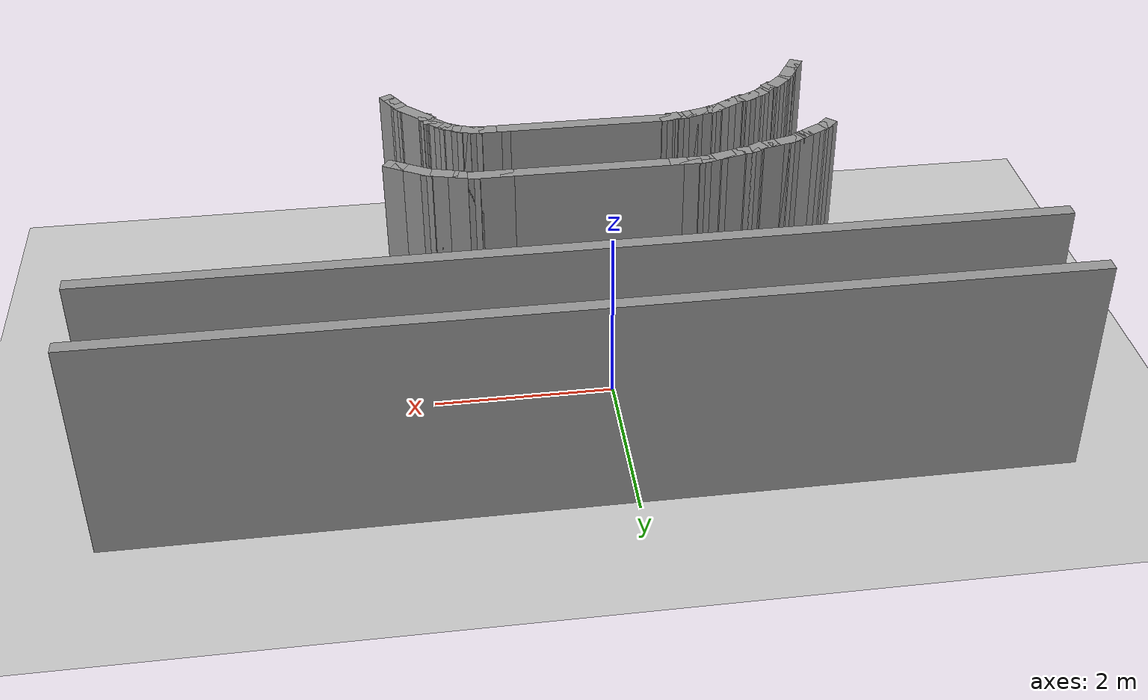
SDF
<sdf version="1.7">
 <world name="default">
  <model name="ground_plane">
   <static>1</static>
   <link name="link">
    <collision name="collision">
     <geometry><plane><normal>0 0 1</normal><size>100 100</size></plane></geometry>
     <surface><friction><ode><mu>100</mu><mu2>50</mu2></ode></friction></surface>
    </collision>
    <visual name="visual">
     <cast_shadows>0</cast_shadows>
     <geometry><plane><normal>0 0 1</normal><size>100 100</size></plane></geometry>
     <material>
      <script><uri>file://media/materials/scripts/gazebo.material</uri><name>Gazebo/Grey</name></script>
     </material>
    </visual>
   </link>
  </model>
  <model name="playground_track">
   <pose>0.405729 -1.1815 0 0 -0 0</pose>
   <link name="Wall_1">
    <collision name="Wall_1_Collision">
     <geometry><box><size>10.25 0.15 2.5</size></box></geometry>
     <pose>0 0 1.25 0 -0 0</pose>
    </collision>
    <visual name="Wall_1_Visual">
     <pose>0 0 1.25 0 -0 0</pose>
     <geometry><box><size>10.25 0.15 2.5</size></box></geometry>
     <material>
      <script><uri>file://media/materials/scripts/gazebo.material</uri><name>Gazebo/Grey</name></script>
      <ambient>1 1 1 1</ambient>
     </material>
     <meta><layer>0</layer></meta>
    </visual>
    <pose>-0.003811 3.01631 0 0 -0 0</pose>
   </link>
   <link name="Wall_133">
    <collision name="Wall_133_Collision">
     <geometry><box><size>0.25 0.15 2.5</size></box></geometry>
     <pose>0 0 1.25 0 -0 0</pose>
    </collision>
    <visual name="Wall_133_Visual">
     <pose>0 0 1.25 0 -0 0</pose>
     <geometry><box><size>0.25 0.15 2.5</size></box></geometry>
     <material>
      <script><uri>file://media/materials/scripts/gazebo.material</uri><name>Gazebo/Grey</name></script>
      <ambient>1 1 1 1</ambient>
     </material>
     <meta><layer>0</layer></meta>
    </visual>
    <pose>1.83248 -1.37665 0 0 -0 2.0944</pose>
   </link>
   <link name="Wall_134">
    <collision name="Wall_134_Collision">
     <geometry><box><size>0.25 0.15 2.5</size></box></geometry>
     <pose>0 0 1.25 0 -0 0</pose>
    </collision>
    <visual name="Wall_134_Visual">
     <pose>0 0 1.25 0 -0 0</pose>
     <geometry><box><size>0.25 0.15 2.5</size></box></geometry>
     <material>
      <script><uri>file://media/materials/scripts/gazebo.material</uri><name>Gazebo/Grey</name></script>
      <ambient>1 1 1 1</ambient>
     </material>
     <meta><layer>0</layer></meta>
    </visual>
    <pose>1.78248 -1.29005 0 0 -0 2.0944</pose>
   </link>
   <link name="Wall_135">
    <collision name="Wall_135_Collision">
     <geometry><box><size>0.25 0.15 2.5</size></box></geometry>
     <pose>0 0 1.25 0 -0 0</pose>
    </collision>
    <visual name="Wall_135_Visual">
     <pose>0 0 1.25 0 -0 0</pose>
     <geometry><box><size>0.25 0.15 2.5</size></box></geometry>
     <material>
      <script><uri>file://media/materials/scripts/gazebo.material</uri><name>Gazebo/Grey</name></script>
      <ambient>1 1 1 1</ambient>
     </material>
     <meta><layer>0</layer></meta>
    </visual>
    <pose>1.73248 -1.20345 0 0 -0 2.0944</pose>
   </link>
   <link name="Wall_136">
    <collision name="Wall_136_Collision">
     <geometry><box><size>0.5 0.15 2.5</size></box></geometry>
     <pose>0 0 1.25 0 -0 0</pose>
    </collision>
    <visual name="Wall_136_Visual">
     <pose>0 0 1.25 0 -0 0</pose>
     <geometry><box><size>0.5 0.15 2.5</size></box></geometry>
     <material>
      <script><uri>file://media/materials/scripts/gazebo.material</uri><name>Gazebo/Grey</name></script>
      <ambient>1 1 1 1</ambient>
     </material>
     <meta><layer>0</layer></meta>
    </visual>
    <pose>1.58373 -1.0364 0 0 -0 2.35619</pose>
   </link>
   <link name="Wall_137">
    <collision name="Wall_137_Collision">
     <geometry><box><size>0.15 0.15 2.5</size></box></geometry>
     <pose>0 0 1.25 0 -0 0</pose>
    </collision>
    <visual name="Wall_137_Visual">
     <pose>0 0 1.25 0 -0 0</pose>
     <geometry><box><size>0.15 0.15 2.5</size></box></geometry>
     <material>
      <script><uri>file://media/materials/scripts/gazebo.material</uri><name>Gazebo/Grey</name></script>
      <ambient>1 1 1 1</ambient>
     </material>
     <meta><layer>0</layer></meta>
    </visual>
    <pose>1.45999 -0.91266 0 0 -0 0</pose>
   </link>
   <link name="Wall_138">
    <collision name="Wall_138_Collision">
     <geometry><box><size>0.15 0.15 2.5</size></box></geometry>
     <pose>0 0 1.25 0 -0 0</pose>
    </collision>
    <visual name="Wall_138_Visual">
     <pose>0 0 1.25 0 -0 0</pose>
     <geometry><box><size>0.15 0.15 2.5</size></box></geometry>
     <material>
      <script><uri>file://media/materials/scripts/gazebo.material</uri><name>Gazebo/Grey</name></script>
      <ambient>1 1 1 1</ambient>
     </material>
     <meta><layer>0</layer></meta>
    </visual>
    <pose>1.45999 -0.91266 0 0 -0 0</pose>
   </link>
   <link name="Wall_139">
    <collision name="Wall_139_Collision">
     <geometry><box><size>0.25 0.15 2.5</size></box></geometry>
     <pose>0 0 1.25 0 -0 0</pose>
    </collision>
    <visual name="Wall_139_Visual">
     <pose>0 0 1.25 0 -0 0</pose>
     <geometry><box><size>0.25 0.15 2.5</size></box></geometry>
     <material>
      <script><uri>file://media/materials/scripts/gazebo.material</uri><name>Gazebo/Grey</name></script>
      <ambient>1 1 1 1</ambient>
     </material>
     <meta><layer>0</layer></meta>
    </visual>
    <pose>1.43499 -0.869358 0 0 -0 2.0944</pose>
   </link>
   <link name="Wall_140">
    <collision name="Wall_140_Collision">
     <geometry><box><size>0.15 0.15 2.5</size></box></geometry>
     <pose>0 0 1.25 0 -0 0</pose>
    </collision>
    <visual name="Wall_140_Visual">
     <pose>0 0 1.25 0 -0 0</pose>
     <geometry><box><size>0.15 0.15 2.5</size></box></geometry>
     <material>
      <script><uri>file://media/materials/scripts/gazebo.material</uri><name>Gazebo/Grey</name></script>
      <ambient>1 1 1 1</ambient>
     </material>
     <meta><layer>0</layer></meta>
    </visual>
    <pose>1.40999 -0.826057 0 0 -0 0</pose>
   </link>
   <link name="Wall_141">
    <collision name="Wall_141_Collision">
     <geometry><box><size>0.25 0.15 2.5</size></box></geometry>
     <pose>0 0 1.25 0 -0 0</pose>
    </collision>
    <visual name="Wall_141_Visual">
     <pose>0 0 1.25 0 -0 0</pose>
     <geometry><box><size>0.25 0.15 2.5</size></box></geometry>
     <material>
      <script><uri>file://media/materials/scripts/gazebo.material</uri><name>Gazebo/Grey</name></script>
      <ambient>1 1 1 1</ambient>
     </material>
     <meta><layer>0</layer></meta>
    </visual>
    <pose>1.37464 -0.790702 0 0 -0 2.35619</pose>
   </link>
   <link name="Wall_142">
    <collision name="Wall_142_Collision">
     <geometry><box><size>0.25 0.15 2.5</size></box></geometry>
     <pose>0 0 1.25 0 -0 0</pose>
    </collision>
    <visual name="Wall_142_Visual">
     <pose>0 0 1.25 0 -0 0</pose>
     <geometry><box><size>0.25 0.15 2.5</size></box></geometry>
     <material>
      <script><uri>file://media/materials/scripts/gazebo.material</uri><name>Gazebo/Grey</name></script>
      <ambient>1 1 1 1</ambient>
     </material>
     <meta><layer>0</layer></meta>
    </visual>
    <pose>1.30393 -0.719991 0 0 -0 2.35619</pose>
   </link>
   <link name="Wall_143">
    <collision name="Wall_143_Collision">
     <geometry><box><size>0.25 0.15 2.5</size></box></geometry>
     <pose>0 0 1.25 0 -0 0</pose>
    </collision>
    <visual name="Wall_143_Visual">
     <pose>0 0 1.25 0 -0 0</pose>
     <geometry><box><size>0.25 0.15 2.5</size></box></geometry>
     <material>
      <script><uri>file://media/materials/scripts/gazebo.material</uri><name>Gazebo/Grey</name></script>
      <ambient>1 1 1 1</ambient>
     </material>
     <meta><layer>0</layer></meta>
    </visual>
    <pose>1.22527 -0.659636 0 0 -0 2.61799</pose>
   </link>
   <link name="Wall_144">
    <collision name="Wall_144_Collision">
     <geometry><box><size>0.25 0.15 2.5</size></box></geometry>
     <pose>0 0 1.25 0 -0 0</pose>
    </collision>
    <visual name="Wall_144_Visual">
     <pose>0 0 1.25 0 -0 0</pose>
     <geometry><box><size>0.25 0.15 2.5</size></box></geometry>
     <material>
      <script><uri>file://media/materials/scripts/gazebo.material</uri><name>Gazebo/Grey</name></script>
      <ambient>1 1 1 1</ambient>
     </material>
     <meta><layer>0</layer></meta>
    </visual>
    <pose>1.13867 -0.609636 0 0 -0 2.61799</pose>
   </link>
   <link name="Wall_145">
    <collision name="Wall_145_Collision">
     <geometry><box><size>0.25 0.15 2.5</size></box></geometry>
     <pose>0 0 1.25 0 -0 0</pose>
    </collision>
    <visual name="Wall_145_Visual">
     <pose>0 0 1.25 0 -0 0</pose>
     <geometry><box><size>0.25 0.15 2.5</size></box></geometry>
     <material>
      <script><uri>file://media/materials/scripts/gazebo.material</uri><name>Gazebo/Grey</name></script>
      <ambient>1 1 1 1</ambient>
     </material>
     <meta><layer>0</layer></meta>
    </visual>
    <pose>1.04707 -0.571695 0 0 -0 2.87979</pose>
   </link>
   <link name="Wall_146">
    <collision name="Wall_146_Collision">
     <geometry><box><size>0.25 0.15 2.5</size></box></geometry>
     <pose>0 0 1.25 0 -0 0</pose>
    </collision>
    <visual name="Wall_146_Visual">
     <pose>0 0 1.25 0 -0 0</pose>
     <geometry><box><size>0.25 0.15 2.5</size></box></geometry>
     <material>
      <script><uri>file://media/materials/scripts/gazebo.material</uri><name>Gazebo/Grey</name></script>
      <ambient>1 1 1 1</ambient>
     </material>
     <meta><layer>0</layer></meta>
    </visual>
    <pose>0.950476 -0.545813 0 0 -0 2.87979</pose>
   </link>
   <link name="Wall_147">
    <collision name="Wall_147_Collision">
     <geometry><box><size>0.25 0.15 2.5</size></box></geometry>
     <pose>0 0 1.25 0 -0 0</pose>
    </collision>
    <visual name="Wall_147_Visual">
     <pose>0 0 1.25 0 -0 0</pose>
     <geometry><box><size>0.25 0.15 2.5</size></box></geometry>
     <material>
      <script><uri>file://media/materials/scripts/gazebo.material</uri><name>Gazebo/Grey</name></script>
      <ambient>1 1 1 1</ambient>
     </material>
     <meta><layer>0</layer></meta>
    </visual>
    <pose>0.852179 -0.532872 0 0 -0 3.14159</pose>
   </link>
   <link name="Wall_148">
    <collision name="Wall_148_Collision">
     <geometry><box><size>0.15 0.15 2.5</size></box></geometry>
     <pose>0 0 1.25 0 -0 0</pose>
    </collision>
    <visual name="Wall_148_Visual">
     <pose>0 0 1.25 0 -0 0</pose>
     <geometry><box><size>0.15 0.15 2.5</size></box></geometry>
     <material>
      <script><uri>file://media/materials/scripts/gazebo.material</uri><name>Gazebo/Grey</name></script>
      <ambient>1 1 1 1</ambient>
     </material>
     <meta><layer>0</layer></meta>
    </visual>
    <pose>0.802179 -0.532872 0 0 -0 0</pose>
   </link>
   <link name="Wall_149">
    <collision name="Wall_149_Collision">
     <geometry><box><size>0.25 0.15 2.5</size></box></geometry>
     <pose>0 0 1.25 0 -0 0</pose>
    </collision>
    <visual name="Wall_149_Visual">
     <pose>0 0 1.25 0 -0 0</pose>
     <geometry><box><size>0.25 0.15 2.5</size></box></geometry>
     <material>
      <script><uri>file://media/materials/scripts/gazebo.material</uri><name>Gazebo/Grey</name></script>
      <ambient>1 1 1 1</ambient>
     </material>
     <meta><layer>0</layer></meta>
    </visual>
    <pose>0.752179 -0.532872 0 0 -0 3.14159</pose>
   </link>
   <link name="Wall_150">
    <collision name="Wall_150_Collision">
     <geometry><box><size>0.25 0.15 2.5</size></box></geometry>
     <pose>0 0 1.25 0 -0 0</pose>
    </collision>
    <visual name="Wall_150_Visual">
     <pose>0 0 1.25 0 -0 0</pose>
     <geometry><box><size>0.25 0.15 2.5</size></box></geometry>
     <material>
      <script><uri>file://media/materials/scripts/gazebo.material</uri><name>Gazebo/Grey</name></script>
      <ambient>1 1 1 1</ambient>
     </material>
     <meta><layer>0</layer></meta>
    </visual>
    <pose>0.652179 -0.532872 0 0 -0 3.14159</pose>
   </link>
   <link name="Wall_151">
    <collision name="Wall_151_Collision">
     <geometry><box><size>2 0.15 2.5</size></box></geometry>
     <pose>0 0 1.25 0 -0 0</pose>
    </collision>
    <visual name="Wall_151_Visual">
     <pose>0 0 1.25 0 -0 0</pose>
     <geometry><box><size>2 0.15 2.5</size></box></geometry>
     <material>
      <script><uri>file://media/materials/scripts/gazebo.material</uri><name>Gazebo/Grey</name></script>
      <ambient>1 1 1 1</ambient>
     </material>
     <meta><layer>0</layer></meta>
    </visual>
    <pose>-0.322821 -0.532872 0 0 -0 3.14159</pose>
   </link>
   <link name="Wall_152">
    <collision name="Wall_152_Collision">
     <geometry><box><size>0.15 0.15 2.5</size></box></geometry>
     <pose>0 0 1.25 0 -0 0</pose>
    </collision>
    <visual name="Wall_152_Visual">
     <pose>0 0 1.25 0 -0 0</pose>
     <geometry><box><size>0.15 0.15 2.5</size></box></geometry>
     <material>
      <script><uri>file://media/materials/scripts/gazebo.material</uri><name>Gazebo/Grey</name></script>
      <ambient>1 1 1 1</ambient>
     </material>
     <meta><layer>0</layer></meta>
    </visual>
    <pose>-1.24782 -0.532872 0 0 -0 0</pose>
   </link>
   <link name="Wall_153">
    <collision name="Wall_153_Collision">
     <geometry><box><size>0.25 0.15 2.5</size></box></geometry>
     <pose>0 0 1.25 0 -0 0</pose>
    </collision>
    <visual name="Wall_153_Visual">
     <pose>0 0 1.25 0 -0 0</pose>
     <geometry><box><size>0.25 0.15 2.5</size></box></geometry>
     <material>
      <script><uri>file://media/materials/scripts/gazebo.material</uri><name>Gazebo/Grey</name></script>
      <ambient>1 1 1 1</ambient>
     </material>
     <meta><layer>0</layer></meta>
    </visual>
    <pose>-1.29612 -0.545813 0 0 -0 -2.87979</pose>
   </link>
   <link name="Wall_154">
    <collision name="Wall_154_Collision">
     <geometry><box><size>0.25 0.15 2.5</size></box></geometry>
     <pose>0 0 1.25 0 -0 0</pose>
    </collision>
    <visual name="Wall_154_Visual">
     <pose>0 0 1.25 0 -0 0</pose>
     <geometry><box><size>0.25 0.15 2.5</size></box></geometry>
     <material>
      <script><uri>file://media/materials/scripts/gazebo.material</uri><name>Gazebo/Grey</name></script>
      <ambient>1 1 1 1</ambient>
     </material>
     <meta><layer>0</layer></meta>
    </visual>
    <pose>-1.39441 -0.558754 0 0 -0 3.14159</pose>
   </link>
   <link name="Wall_155">
    <collision name="Wall_155_Collision">
     <geometry><box><size>0.25 0.15 2.5</size></box></geometry>
     <pose>0 0 1.25 0 -0 0</pose>
    </collision>
    <visual name="Wall_155_Visual">
     <pose>0 0 1.25 0 -0 0</pose>
     <geometry><box><size>0.25 0.15 2.5</size></box></geometry>
     <material>
      <script><uri>file://media/materials/scripts/gazebo.material</uri><name>Gazebo/Grey</name></script>
      <ambient>1 1 1 1</ambient>
     </material>
     <meta><layer>0</layer></meta>
    </visual>
    <pose>-1.49271 -0.571695 0 0 -0 -2.87979</pose>
   </link>
   <link name="Wall_156">
    <collision name="Wall_156_Collision">
     <geometry><box><size>0.25 0.15 2.5</size></box></geometry>
     <pose>0 0 1.25 0 -0 0</pose>
    </collision>
    <visual name="Wall_156_Visual">
     <pose>0 0 1.25 0 -0 0</pose>
     <geometry><box><size>0.25 0.15 2.5</size></box></geometry>
     <material>
      <script><uri>file://media/materials/scripts/gazebo.material</uri><name>Gazebo/Grey</name></script>
      <ambient>1 1 1 1</ambient>
     </material>
     <meta><layer>0</layer></meta>
    </visual>
    <pose>-1.5893 -0.597577 0 0 -0 -2.87979</pose>
   </link>
   <link name="Wall_157">
    <collision name="Wall_157_Collision">
     <geometry><box><size>0.25 0.15 2.5</size></box></geometry>
     <pose>0 0 1.25 0 -0 0</pose>
    </collision>
    <visual name="Wall_157_Visual">
     <pose>0 0 1.25 0 -0 0</pose>
     <geometry><box><size>0.25 0.15 2.5</size></box></geometry>
     <material>
      <script><uri>file://media/materials/scripts/gazebo.material</uri><name>Gazebo/Grey</name></script>
      <ambient>1 1 1 1</ambient>
     </material>
     <meta><layer>0</layer></meta>
    </visual>
    <pose>-1.5893 -0.597577 0 0 -0 0.261799</pose>
   </link>
   <link name="Wall_158">
    <collision name="Wall_158_Collision">
     <geometry><box><size>0.25 0.15 2.5</size></box></geometry>
     <pose>0 0 1.25 0 -0 0</pose>
    </collision>
    <visual name="Wall_158_Visual">
     <pose>0 0 1.25 0 -0 0</pose>
     <geometry><box><size>0.25 0.15 2.5</size></box></geometry>
     <material>
      <script><uri>file://media/materials/scripts/gazebo.material</uri><name>Gazebo/Grey</name></script>
      <ambient>1 1 1 1</ambient>
     </material>
     <meta><layer>0</layer></meta>
    </visual>
    <pose>-1.5893 -0.597577 0 0 -0 -2.87979</pose>
   </link>
   <link name="Wall_159">
    <collision name="Wall_159_Collision">
     <geometry><box><size>0.25 0.15 2.5</size></box></geometry>
     <pose>0 0 1.25 0 -0 0</pose>
    </collision>
    <visual name="Wall_159_Visual">
     <pose>0 0 1.25 0 -0 0</pose>
     <geometry><box><size>0.25 0.15 2.5</size></box></geometry>
     <material>
      <script><uri>file://media/materials/scripts/gazebo.material</uri><name>Gazebo/Grey</name></script>
      <ambient>1 1 1 1</ambient>
     </material>
     <meta><layer>0</layer></meta>
    </visual>
    <pose>-1.68589 -0.623459 0 0 -0 -2.87979</pose>
   </link>
   <link name="Wall_160">
    <collision name="Wall_160_Collision">
     <geometry><box><size>0.25 0.15 2.5</size></box></geometry>
     <pose>0 0 1.25 0 -0 0</pose>
    </collision>
    <visual name="Wall_160_Visual">
     <pose>0 0 1.25 0 -0 0</pose>
     <geometry><box><size>0.25 0.15 2.5</size></box></geometry>
     <material>
      <script><uri>file://media/materials/scripts/gazebo.material</uri><name>Gazebo/Grey</name></script>
      <ambient>1 1 1 1</ambient>
     </material>
     <meta><layer>0</layer></meta>
    </visual>
    <pose>-1.78249 -0.649341 0 0 -0 -2.87979</pose>
   </link>
   <link name="Wall_161">
    <collision name="Wall_161_Collision">
     <geometry><box><size>0.15 0.15 2.5</size></box></geometry>
     <pose>0 0 1.25 0 -0 0</pose>
    </collision>
    <visual name="Wall_161_Visual">
     <pose>0 0 1.25 0 -0 0</pose>
     <geometry><box><size>0.15 0.15 2.5</size></box></geometry>
     <material>
      <script><uri>file://media/materials/scripts/gazebo.material</uri><name>Gazebo/Grey</name></script>
      <ambient>1 1 1 1</ambient>
     </material>
     <meta><layer>0</layer></meta>
    </visual>
    <pose>-1.83078 -0.662282 0 0 -0 0</pose>
   </link>
   <link name="Wall_162">
    <collision name="Wall_162_Collision">
     <geometry><box><size>0.25 0.15 2.5</size></box></geometry>
     <pose>0 0 1.25 0 -0 0</pose>
    </collision>
    <visual name="Wall_162_Visual">
     <pose>0 0 1.25 0 -0 0</pose>
     <geometry><box><size>0.25 0.15 2.5</size></box></geometry>
     <material>
      <script><uri>file://media/materials/scripts/gazebo.material</uri><name>Gazebo/Grey</name></script>
      <ambient>1 1 1 1</ambient>
     </material>
     <meta><layer>0</layer></meta>
    </visual>
    <pose>-1.87409 -0.687282 0 0 -0 -2.61799</pose>
   </link>
   <link name="Wall_163">
    <collision name="Wall_163_Collision">
     <geometry><box><size>0.25 0.15 2.5</size></box></geometry>
     <pose>0 0 1.25 0 -0 0</pose>
    </collision>
    <visual name="Wall_163_Visual">
     <pose>0 0 1.25 0 -0 0</pose>
     <geometry><box><size>0.25 0.15 2.5</size></box></geometry>
     <material>
      <script><uri>file://media/materials/scripts/gazebo.material</uri><name>Gazebo/Grey</name></script>
      <ambient>1 1 1 1</ambient>
     </material>
     <meta><layer>0</layer></meta>
    </visual>
    <pose>-1.96069 -0.737282 0 0 -0 -2.61799</pose>
   </link>
   <link name="Wall_164">
    <collision name="Wall_164_Collision">
     <geometry><box><size>0.25 0.15 2.5</size></box></geometry>
     <pose>0 0 1.25 0 -0 0</pose>
    </collision>
    <visual name="Wall_164_Visual">
     <pose>0 0 1.25 0 -0 0</pose>
     <geometry><box><size>0.25 0.15 2.5</size></box></geometry>
     <material>
      <script><uri>file://media/materials/scripts/gazebo.material</uri><name>Gazebo/Grey</name></script>
      <ambient>1 1 1 1</ambient>
     </material>
     <meta><layer>0</layer></meta>
    </visual>
    <pose>-2.04729 -0.787282 0 0 -0 -2.61799</pose>
   </link>
   <link name="Wall_165">
    <collision name="Wall_165_Collision">
     <geometry><box><size>0.25 0.15 2.5</size></box></geometry>
     <pose>0 0 1.25 0 -0 0</pose>
    </collision>
    <visual name="Wall_165_Visual">
     <pose>0 0 1.25 0 -0 0</pose>
     <geometry><box><size>0.25 0.15 2.5</size></box></geometry>
     <material>
      <script><uri>file://media/materials/scripts/gazebo.material</uri><name>Gazebo/Grey</name></script>
      <ambient>1 1 1 1</ambient>
     </material>
     <meta><layer>0</layer></meta>
    </visual>
    <pose>-2.13389 -0.837282 0 0 -0 -2.61799</pose>
   </link>
   <link name="Wall_166">
    <collision name="Wall_166_Collision">
     <geometry><box><size>0.25 0.15 2.5</size></box></geometry>
     <pose>0 0 1.25 0 -0 0</pose>
    </collision>
    <visual name="Wall_166_Visual">
     <pose>0 0 1.25 0 -0 0</pose>
     <geometry><box><size>0.25 0.15 2.5</size></box></geometry>
     <material>
      <script><uri>file://media/materials/scripts/gazebo.material</uri><name>Gazebo/Grey</name></script>
      <ambient>1 1 1 1</ambient>
     </material>
     <meta><layer>0</layer></meta>
    </visual>
    <pose>-2.22549 -0.875222 0 0 -0 -2.87979</pose>
   </link>
   <link name="Wall_167">
    <collision name="Wall_167_Collision">
     <geometry><box><size>0.25 0.15 2.5</size></box></geometry>
     <pose>0 0 1.25 0 -0 0</pose>
    </collision>
    <visual name="Wall_167_Visual">
     <pose>0 0 1.25 0 -0 0</pose>
     <geometry><box><size>0.25 0.15 2.5</size></box></geometry>
     <material>
      <script><uri>file://media/materials/scripts/gazebo.material</uri><name>Gazebo/Grey</name></script>
      <ambient>1 1 1 1</ambient>
     </material>
     <meta><layer>0</layer></meta>
    </visual>
    <pose>-2.31709 -0.913163 0 0 -0 -2.61799</pose>
   </link>
   <link name="Wall_168">
    <collision name="Wall_168_Collision">
     <geometry><box><size>0.25 0.15 2.5</size></box></geometry>
     <pose>0 0 1.25 0 -0 0</pose>
    </collision>
    <visual name="Wall_168_Visual">
     <pose>0 0 1.25 0 -0 0</pose>
     <geometry><box><size>0.25 0.15 2.5</size></box></geometry>
     <material>
      <script><uri>file://media/materials/scripts/gazebo.material</uri><name>Gazebo/Grey</name></script>
      <ambient>1 1 1 1</ambient>
     </material>
     <meta><layer>0</layer></meta>
    </visual>
    <pose>-2.40369 -0.963163 0 0 -0 -2.61799</pose>
   </link>
   <link name="Wall_169">
    <collision name="Wall_169_Collision">
     <geometry><box><size>0.25 0.15 2.5</size></box></geometry>
     <pose>0 0 1.25 0 -0 0</pose>
    </collision>
    <visual name="Wall_169_Visual">
     <pose>0 0 1.25 0 -0 0</pose>
     <geometry><box><size>0.25 0.15 2.5</size></box></geometry>
     <material>
      <script><uri>file://media/materials/scripts/gazebo.material</uri><name>Gazebo/Grey</name></script>
      <ambient>1 1 1 1</ambient>
     </material>
     <meta><layer>0</layer></meta>
    </visual>
    <pose>-2.48235 -1.02352 0 0 -0 -2.35619</pose>
   </link>
   <link name="Wall_170">
    <collision name="Wall_170_Collision">
     <geometry><box><size>0.25 0.15 2.5</size></box></geometry>
     <pose>0 0 1.25 0 -0 0</pose>
    </collision>
    <visual name="Wall_170_Visual">
     <pose>0 0 1.25 0 -0 0</pose>
     <geometry><box><size>0.25 0.15 2.5</size></box></geometry>
     <material>
      <script><uri>file://media/materials/scripts/gazebo.material</uri><name>Gazebo/Grey</name></script>
      <ambient>1 1 1 1</ambient>
     </material>
     <meta><layer>0</layer></meta>
    </visual>
    <pose>-2.55306 -1.09423 0 0 -0 -2.35619</pose>
   </link>
   <link name="Wall_171">
    <collision name="Wall_171_Collision">
     <geometry><box><size>0.25 0.15 2.5</size></box></geometry>
     <pose>0 0 1.25 0 -0 0</pose>
    </collision>
    <visual name="Wall_171_Visual">
     <pose>0 0 1.25 0 -0 0</pose>
     <geometry><box><size>0.25 0.15 2.5</size></box></geometry>
     <material>
      <script><uri>file://media/materials/scripts/gazebo.material</uri><name>Gazebo/Grey</name></script>
      <ambient>1 1 1 1</ambient>
     </material>
     <meta><layer>0</layer></meta>
    </visual>
    <pose>-2.63171 -1.15458 0 0 -0 -2.61799</pose>
   </link>
   <link name="Wall_172">
    <collision name="Wall_172_Collision">
     <geometry><box><size>0.25 0.15 2.5</size></box></geometry>
     <pose>0 0 1.25 0 -0 0</pose>
    </collision>
    <visual name="Wall_172_Visual">
     <pose>0 0 1.25 0 -0 0</pose>
     <geometry><box><size>0.25 0.15 2.5</size></box></geometry>
     <material>
      <script><uri>file://media/materials/scripts/gazebo.material</uri><name>Gazebo/Grey</name></script>
      <ambient>1 1 1 1</ambient>
     </material>
     <meta><layer>0</layer></meta>
    </visual>
    <pose>-2.71037 -1.21494 0 0 -0 -2.35619</pose>
   </link>
   <link name="Wall_173">
    <collision name="Wall_173_Collision">
     <geometry><box><size>0.25 0.15 2.5</size></box></geometry>
     <pose>0 0 1.25 0 -0 0</pose>
    </collision>
    <visual name="Wall_173_Visual">
     <pose>0 0 1.25 0 -0 0</pose>
     <geometry><box><size>0.25 0.15 2.5</size></box></geometry>
     <material>
      <script><uri>file://media/materials/scripts/gazebo.material</uri><name>Gazebo/Grey</name></script>
      <ambient>1 1 1 1</ambient>
     </material>
     <meta><layer>0</layer></meta>
    </visual>
    <pose>-2.78108 -1.28565 0 0 -0 -2.35619</pose>
   </link>
   <link name="Wall_174">
    <collision name="Wall_174_Collision">
     <geometry><box><size>0.25 0.15 2.5</size></box></geometry>
     <pose>0 0 1.25 0 -0 0</pose>
    </collision>
    <visual name="Wall_174_Visual">
     <pose>0 0 1.25 0 -0 0</pose>
     <geometry><box><size>0.25 0.15 2.5</size></box></geometry>
     <material>
      <script><uri>file://media/materials/scripts/gazebo.material</uri><name>Gazebo/Grey</name></script>
      <ambient>1 1 1 1</ambient>
     </material>
     <meta><layer>0</layer></meta>
    </visual>
    <pose>-2.84144 -1.36431 0 0 -0 -2.0944</pose>
   </link>
   <link name="Wall_175">
    <collision name="Wall_175_Collision">
     <geometry><box><size>0.25 0.15 2.5</size></box></geometry>
     <pose>0 0 1.25 0 -0 0</pose>
    </collision>
    <visual name="Wall_175_Visual">
     <pose>0 0 1.25 0 -0 0</pose>
     <geometry><box><size>0.25 0.15 2.5</size></box></geometry>
     <material>
      <script><uri>file://media/materials/scripts/gazebo.material</uri><name>Gazebo/Grey</name></script>
      <ambient>1 1 1 1</ambient>
     </material>
     <meta><layer>0</layer></meta>
    </visual>
    <pose>-2.89144 -1.45091 0 0 -0 -2.0944</pose>
   </link>
   <link name="Wall_176">
    <collision name="Wall_176_Collision">
     <geometry><box><size>0.25 0.15 2.5</size></box></geometry>
     <pose>0 0 1.25 0 -0 0</pose>
    </collision>
    <visual name="Wall_176_Visual">
     <pose>0 0 1.25 0 -0 0</pose>
     <geometry><box><size>0.25 0.15 2.5</size></box></geometry>
     <material>
      <script><uri>file://media/materials/scripts/gazebo.material</uri><name>Gazebo/Grey</name></script>
      <ambient>1 1 1 1</ambient>
     </material>
     <meta><layer>0</layer></meta>
    </visual>
    <pose>-2.94144 -1.53751 0 0 -0 -2.0944</pose>
   </link>
   <link name="Wall_177">
    <collision name="Wall_177_Collision">
     <geometry><box><size>0.25 0.15 2.5</size></box></geometry>
     <pose>0 0 1.25 0 -0 0</pose>
    </collision>
    <visual name="Wall_177_Visual">
     <pose>0 0 1.25 0 -0 0</pose>
     <geometry><box><size>0.25 0.15 2.5</size></box></geometry>
     <material>
      <script><uri>file://media/materials/scripts/gazebo.material</uri><name>Gazebo/Grey</name></script>
      <ambient>1 1 1 1</ambient>
     </material>
     <meta><layer>0</layer></meta>
    </visual>
    <pose>-2.99144 -1.62411 0 0 -0 -2.0944</pose>
   </link>
   <link name="Wall_275">
    <collision name="Wall_275_Collision">
     <geometry><box><size>10.25 0.15 2.5</size></box></geometry>
     <pose>0 0 1.25 0 -0 0</pose>
    </collision>
    <visual name="Wall_275_Visual">
     <pose>0 0 1.25 0 -0 0</pose>
     <geometry><box><size>10.25 0.15 2.5</size></box></geometry>
     <material>
      <script><uri>file://media/materials/scripts/gazebo.material</uri><name>Gazebo/Grey</name></script>
      <ambient>1 1 1 1</ambient>
     </material>
     <meta><layer>0</layer></meta>
    </visual>
    <pose>0.022639 1.98476 0 0 -0 0</pose>
   </link>
   <link name="Wall_336">
    <collision name="Wall_336_Collision">
     <geometry><box><size>0.25 0.15 2.5</size></box></geometry>
     <pose>0 0 1.25 0 -0 0</pose>
    </collision>
    <visual name="Wall_336_Visual">
     <pose>0 0 1.25 0 -0 0</pose>
     <geometry><box><size>0.25 0.15 2.5</size></box></geometry>
     <material>
      <script><uri>file://media/materials/scripts/gazebo.material</uri><name>Gazebo/Grey</name></script>
      <ambient>1 1 1 1</ambient>
     </material>
     <meta><layer>0</layer></meta>
    </visual>
    <pose>1.83184 0.122112 0 0 -0 2.61799</pose>
   </link>
   <link name="Wall_337">
    <collision name="Wall_337_Collision">
     <geometry><box><size>0.5 0.15 2.5</size></box></geometry>
     <pose>0 0 1.25 0 -0 0</pose>
    </collision>
    <visual name="Wall_337_Visual">
     <pose>0 0 1.25 0 -0 0</pose>
     <geometry><box><size>0.5 0.15 2.5</size></box></geometry>
     <material>
      <script><uri>file://media/materials/scripts/gazebo.material</uri><name>Gazebo/Grey</name></script>
      <ambient>1 1 1 1</ambient>
     </material>
     <meta><layer>0</layer></meta>
    </visual>
    <pose>1.63698 0.234612 0 0 -0 2.61799</pose>
   </link>
   <link name="Wall_338">
    <collision name="Wall_338_Collision">
     <geometry><box><size>0.25 0.15 2.5</size></box></geometry>
     <pose>0 0 1.25 0 -0 0</pose>
    </collision>
    <visual name="Wall_338_Visual">
     <pose>0 0 1.25 0 -0 0</pose>
     <geometry><box><size>0.25 0.15 2.5</size></box></geometry>
     <material>
      <script><uri>file://media/materials/scripts/gazebo.material</uri><name>Gazebo/Grey</name></script>
      <ambient>1 1 1 1</ambient>
     </material>
     <meta><layer>0</layer></meta>
    </visual>
    <pose>1.43713 0.335053 0 0 -0 2.87979</pose>
   </link>
   <link name="Wall_339">
    <collision name="Wall_339_Collision">
     <geometry><box><size>0.25 0.15 2.5</size></box></geometry>
     <pose>0 0 1.25 0 -0 0</pose>
    </collision>
    <visual name="Wall_339_Visual">
     <pose>0 0 1.25 0 -0 0</pose>
     <geometry><box><size>0.25 0.15 2.5</size></box></geometry>
     <material>
      <script><uri>file://media/materials/scripts/gazebo.material</uri><name>Gazebo/Grey</name></script>
      <ambient>1 1 1 1</ambient>
     </material>
     <meta><layer>0</layer></meta>
    </visual>
    <pose>1.34054 0.360935 0 0 -0 2.87979</pose>
   </link>
   <link name="Wall_340">
    <collision name="Wall_340_Collision">
     <geometry><box><size>0.25 0.15 2.5</size></box></geometry>
     <pose>0 0 1.25 0 -0 0</pose>
    </collision>
    <visual name="Wall_340_Visual">
     <pose>0 0 1.25 0 -0 0</pose>
     <geometry><box><size>0.25 0.15 2.5</size></box></geometry>
     <material>
      <script><uri>file://media/materials/scripts/gazebo.material</uri><name>Gazebo/Grey</name></script>
      <ambient>1 1 1 1</ambient>
     </material>
     <meta><layer>0</layer></meta>
    </visual>
    <pose>1.24395 0.386817 0 0 -0 2.87979</pose>
   </link>
   <link name="Wall_341">
    <collision name="Wall_341_Collision">
     <geometry><box><size>0.25 0.15 2.5</size></box></geometry>
     <pose>0 0 1.25 0 -0 0</pose>
    </collision>
    <visual name="Wall_341_Visual">
     <pose>0 0 1.25 0 -0 0</pose>
     <geometry><box><size>0.25 0.15 2.5</size></box></geometry>
     <material>
      <script><uri>file://media/materials/scripts/gazebo.material</uri><name>Gazebo/Grey</name></script>
      <ambient>1 1 1 1</ambient>
     </material>
     <meta><layer>0</layer></meta>
    </visual>
    <pose>1.14736 0.412699 0 0 -0 2.87979</pose>
   </link>
   <link name="Wall_342">
    <collision name="Wall_342_Collision">
     <geometry><box><size>0.25 0.15 2.5</size></box></geometry>
     <pose>0 0 1.25 0 -0 0</pose>
    </collision>
    <visual name="Wall_342_Visual">
     <pose>0 0 1.25 0 -0 0</pose>
     <geometry><box><size>0.25 0.15 2.5</size></box></geometry>
     <material>
      <script><uri>file://media/materials/scripts/gazebo.material</uri><name>Gazebo/Grey</name></script>
      <ambient>1 1 1 1</ambient>
     </material>
     <meta><layer>0</layer></meta>
    </visual>
    <pose>1.05076 0.438581 0 0 -0 2.87979</pose>
   </link>
   <link name="Wall_343">
    <collision name="Wall_343_Collision">
     <geometry><box><size>0.15 0.15 2.5</size></box></geometry>
     <pose>0 0 1.25 0 -0 0</pose>
    </collision>
    <visual name="Wall_343_Visual">
     <pose>0 0 1.25 0 -0 0</pose>
     <geometry><box><size>0.15 0.15 2.5</size></box></geometry>
     <material>
      <script><uri>file://media/materials/scripts/gazebo.material</uri><name>Gazebo/Grey</name></script>
      <ambient>1 1 1 1</ambient>
     </material>
     <meta><layer>0</layer></meta>
    </visual>
    <pose>1.00247 0.451522 0 0 -0 0</pose>
   </link>
   <link name="Wall_344">
    <collision name="Wall_344_Collision">
     <geometry><box><size>0.5 0.15 2.5</size></box></geometry>
     <pose>0 0 1.25 0 -0 0</pose>
    </collision>
    <visual name="Wall_344_Visual">
     <pose>0 0 1.25 0 -0 0</pose>
     <geometry><box><size>0.5 0.15 2.5</size></box></geometry>
     <material>
      <script><uri>file://media/materials/scripts/gazebo.material</uri><name>Gazebo/Grey</name></script>
      <ambient>1 1 1 1</ambient>
     </material>
     <meta><layer>0</layer></meta>
    </visual>
    <pose>0.827467 0.451522 0 0 -0 3.14159</pose>
   </link>
   <link name="Wall_345">
    <collision name="Wall_345_Collision">
     <geometry><box><size>2 0.15 2.5</size></box></geometry>
     <pose>0 0 1.25 0 -0 0</pose>
    </collision>
    <visual name="Wall_345_Visual">
     <pose>0 0 1.25 0 -0 0</pose>
     <geometry><box><size>2 0.15 2.5</size></box></geometry>
     <material>
      <script><uri>file://media/materials/scripts/gazebo.material</uri><name>Gazebo/Grey</name></script>
      <ambient>1 1 1 1</ambient>
     </material>
     <meta><layer>0</layer></meta>
    </visual>
    <pose>-0.272533 0.451522 0 0 -0 3.14159</pose>
   </link>
   <link name="Wall_346">
    <collision name="Wall_346_Collision">
     <geometry><box><size>0.25 0.15 2.5</size></box></geometry>
     <pose>0 0 1.25 0 -0 0</pose>
    </collision>
    <visual name="Wall_346_Visual">
     <pose>0 0 1.25 0 -0 0</pose>
     <geometry><box><size>0.25 0.15 2.5</size></box></geometry>
     <material>
      <script><uri>file://media/materials/scripts/gazebo.material</uri><name>Gazebo/Grey</name></script>
      <ambient>1 1 1 1</ambient>
     </material>
     <meta><layer>0</layer></meta>
    </visual>
    <pose>-1.24753 0.451522 0 0 -0 3.14159</pose>
   </link>
   <link name="Wall_347">
    <collision name="Wall_347_Collision">
     <geometry><box><size>0.25 0.15 2.5</size></box></geometry>
     <pose>0 0 1.25 0 -0 0</pose>
    </collision>
    <visual name="Wall_347_Visual">
     <pose>0 0 1.25 0 -0 0</pose>
     <geometry><box><size>0.25 0.15 2.5</size></box></geometry>
     <material>
      <script><uri>file://media/materials/scripts/gazebo.material</uri><name>Gazebo/Grey</name></script>
      <ambient>1 1 1 1</ambient>
     </material>
     <meta><layer>0</layer></meta>
    </visual>
    <pose>-1.34753 0.451522 0 0 -0 3.14159</pose>
   </link>
   <link name="Wall_348">
    <collision name="Wall_348_Collision">
     <geometry><box><size>0.25 0.15 2.5</size></box></geometry>
     <pose>0 0 1.25 0 -0 0</pose>
    </collision>
    <visual name="Wall_348_Visual">
     <pose>0 0 1.25 0 -0 0</pose>
     <geometry><box><size>0.25 0.15 2.5</size></box></geometry>
     <material>
      <script><uri>file://media/materials/scripts/gazebo.material</uri><name>Gazebo/Grey</name></script>
      <ambient>1 1 1 1</ambient>
     </material>
     <meta><layer>0</layer></meta>
    </visual>
    <pose>-1.44753 0.451522 0 0 -0 3.14159</pose>
   </link>
   <link name="Wall_349">
    <collision name="Wall_349_Collision">
     <geometry><box><size>0.25 0.15 2.5</size></box></geometry>
     <pose>0 0 1.25 0 -0 0</pose>
    </collision>
    <visual name="Wall_349_Visual">
     <pose>0 0 1.25 0 -0 0</pose>
     <geometry><box><size>0.25 0.15 2.5</size></box></geometry>
     <material>
      <script><uri>file://media/materials/scripts/gazebo.material</uri><name>Gazebo/Grey</name></script>
      <ambient>1 1 1 1</ambient>
     </material>
     <meta><layer>0</layer></meta>
    </visual>
    <pose>-1.54583 0.438581 0 0 -0 -2.87979</pose>
   </link>
   <link name="Wall_350">
    <collision name="Wall_350_Collision">
     <geometry><box><size>0.25 0.15 2.5</size></box></geometry>
     <pose>0 0 1.25 0 -0 0</pose>
    </collision>
    <visual name="Wall_350_Visual">
     <pose>0 0 1.25 0 -0 0</pose>
     <geometry><box><size>0.25 0.15 2.5</size></box></geometry>
     <material>
      <script><uri>file://media/materials/scripts/gazebo.material</uri><name>Gazebo/Grey</name></script>
      <ambient>1 1 1 1</ambient>
     </material>
     <meta><layer>0</layer></meta>
    </visual>
    <pose>-1.64242 0.412699 0 0 -0 -2.87979</pose>
   </link>
   <link name="Wall_351">
    <collision name="Wall_351_Collision">
     <geometry><box><size>0.15 0.15 2.5</size></box></geometry>
     <pose>0 0 1.25 0 -0 0</pose>
    </collision>
    <visual name="Wall_351_Visual">
     <pose>0 0 1.25 0 -0 0</pose>
     <geometry><box><size>0.15 0.15 2.5</size></box></geometry>
     <material>
      <script><uri>file://media/materials/scripts/gazebo.material</uri><name>Gazebo/Grey</name></script>
      <ambient>1 1 1 1</ambient>
     </material>
     <meta><layer>0</layer></meta>
    </visual>
    <pose>-1.69072 0.399758 0 0 -0 0</pose>
   </link>
   <link name="Wall_352">
    <collision name="Wall_352_Collision">
     <geometry><box><size>0.25 0.15 2.5</size></box></geometry>
     <pose>0 0 1.25 0 -0 0</pose>
    </collision>
    <visual name="Wall_352_Visual">
     <pose>0 0 1.25 0 -0 0</pose>
     <geometry><box><size>0.25 0.15 2.5</size></box></geometry>
     <material>
      <script><uri>file://media/materials/scripts/gazebo.material</uri><name>Gazebo/Grey</name></script>
      <ambient>1 1 1 1</ambient>
     </material>
     <meta><layer>0</layer></meta>
    </visual>
    <pose>-1.73901 0.386817 0 0 -0 -2.87979</pose>
   </link>
   <link name="Wall_353">
    <collision name="Wall_353_Collision">
     <geometry><box><size>0.25 0.15 2.5</size></box></geometry>
     <pose>0 0 1.25 0 -0 0</pose>
    </collision>
    <visual name="Wall_353_Visual">
     <pose>0 0 1.25 0 -0 0</pose>
     <geometry><box><size>0.25 0.15 2.5</size></box></geometry>
     <material>
      <script><uri>file://media/materials/scripts/gazebo.material</uri><name>Gazebo/Grey</name></script>
      <ambient>1 1 1 1</ambient>
     </material>
     <meta><layer>0</layer></meta>
    </visual>
    <pose>-1.83561 0.360935 0 0 -0 -2.87979</pose>
   </link>
   <link name="Wall_354">
    <collision name="Wall_354_Collision">
     <geometry><box><size>0.25 0.15 2.5</size></box></geometry>
     <pose>0 0 1.25 0 -0 0</pose>
    </collision>
    <visual name="Wall_354_Visual">
     <pose>0 0 1.25 0 -0 0</pose>
     <geometry><box><size>0.25 0.15 2.5</size></box></geometry>
     <material>
      <script><uri>file://media/materials/scripts/gazebo.material</uri><name>Gazebo/Grey</name></script>
      <ambient>1 1 1 1</ambient>
     </material>
     <meta><layer>0</layer></meta>
    </visual>
    <pose>-1.9322 0.335053 0 0 -0 -2.87979</pose>
   </link>
   <link name="Wall_355">
    <collision name="Wall_355_Collision">
     <geometry><box><size>0.15 0.15 2.5</size></box></geometry>
     <pose>0 0 1.25 0 -0 0</pose>
    </collision>
    <visual name="Wall_355_Visual">
     <pose>0 0 1.25 0 -0 0</pose>
     <geometry><box><size>0.15 0.15 2.5</size></box></geometry>
     <material>
      <script><uri>file://media/materials/scripts/gazebo.material</uri><name>Gazebo/Grey</name></script>
      <ambient>1 1 1 1</ambient>
     </material>
     <meta><layer>0</layer></meta>
    </visual>
    <pose>-1.9805 0.322112 0 0 -0 0</pose>
   </link>
   <link name="Wall_356">
    <collision name="Wall_356_Collision">
     <geometry><box><size>0.25 0.15 2.5</size></box></geometry>
     <pose>0 0 1.25 0 -0 0</pose>
    </collision>
    <visual name="Wall_356_Visual">
     <pose>0 0 1.25 0 -0 0</pose>
     <geometry><box><size>0.25 0.15 2.5</size></box></geometry>
     <material>
      <script><uri>file://media/materials/scripts/gazebo.material</uri><name>Gazebo/Grey</name></script>
      <ambient>1 1 1 1</ambient>
     </material>
     <meta><layer>0</layer></meta>
    </visual>
    <pose>-2.02879 0.309171 0 0 -0 -2.87979</pose>
   </link>
   <link name="Wall_357">
    <collision name="Wall_357_Collision">
     <geometry><box><size>0.25 0.15 2.5</size></box></geometry>
     <pose>0 0 1.25 0 -0 0</pose>
    </collision>
    <visual name="Wall_357_Visual">
     <pose>0 0 1.25 0 -0 0</pose>
     <geometry><box><size>0.25 0.15 2.5</size></box></geometry>
     <material>
      <script><uri>file://media/materials/scripts/gazebo.material</uri><name>Gazebo/Grey</name></script>
      <ambient>1 1 1 1</ambient>
     </material>
     <meta><layer>0</layer></meta>
    </visual>
    <pose>-2.12039 0.27123 0 0 -0 -2.61799</pose>
   </link>
   <link name="Wall_358">
    <collision name="Wall_358_Collision">
     <geometry><box><size>0.25 0.15 2.5</size></box></geometry>
     <pose>0 0 1.25 0 -0 0</pose>
    </collision>
    <visual name="Wall_358_Visual">
     <pose>0 0 1.25 0 -0 0</pose>
     <geometry><box><size>0.25 0.15 2.5</size></box></geometry>
     <material>
      <script><uri>file://media/materials/scripts/gazebo.material</uri><name>Gazebo/Grey</name></script>
      <ambient>1 1 1 1</ambient>
     </material>
     <meta><layer>0</layer></meta>
    </visual>
    <pose>-2.21199 0.233289 0 0 -0 -2.87979</pose>
   </link>
   <link name="Wall_359">
    <collision name="Wall_359_Collision">
     <geometry><box><size>0.25 0.15 2.5</size></box></geometry>
     <pose>0 0 1.25 0 -0 0</pose>
    </collision>
    <visual name="Wall_359_Visual">
     <pose>0 0 1.25 0 -0 0</pose>
     <geometry><box><size>0.25 0.15 2.5</size></box></geometry>
     <material>
      <script><uri>file://media/materials/scripts/gazebo.material</uri><name>Gazebo/Grey</name></script>
      <ambient>1 1 1 1</ambient>
     </material>
     <meta><layer>0</layer></meta>
    </visual>
    <pose>-2.30858 0.207407 0 0 -0 -2.87979</pose>
   </link>
   <link name="Wall_360">
    <collision name="Wall_360_Collision">
     <geometry><box><size>0.25 0.15 2.5</size></box></geometry>
     <pose>0 0 1.25 0 -0 0</pose>
    </collision>
    <visual name="Wall_360_Visual">
     <pose>0 0 1.25 0 -0 0</pose>
     <geometry><box><size>0.25 0.15 2.5</size></box></geometry>
     <material>
      <script><uri>file://media/materials/scripts/gazebo.material</uri><name>Gazebo/Grey</name></script>
      <ambient>1 1 1 1</ambient>
     </material>
     <meta><layer>0</layer></meta>
    </visual>
    <pose>-2.40517 0.181525 0 0 -0 -2.87979</pose>
   </link>
   <link name="Wall_361">
    <collision name="Wall_361_Collision">
     <geometry><box><size>0.25 0.15 2.5</size></box></geometry>
     <pose>0 0 1.25 0 -0 0</pose>
    </collision>
    <visual name="Wall_361_Visual">
     <pose>0 0 1.25 0 -0 0</pose>
     <geometry><box><size>0.25 0.15 2.5</size></box></geometry>
     <material>
      <script><uri>file://media/materials/scripts/gazebo.material</uri><name>Gazebo/Grey</name></script>
      <ambient>1 1 1 1</ambient>
     </material>
     <meta><layer>0</layer></meta>
    </visual>
    <pose>-2.50176 0.155643 0 0 -0 -2.87979</pose>
   </link>
   <link name="Wall_362">
    <collision name="Wall_362_Collision">
     <geometry><box><size>0.25 0.15 2.5</size></box></geometry>
     <pose>0 0 1.25 0 -0 0</pose>
    </collision>
    <visual name="Wall_362_Visual">
     <pose>0 0 1.25 0 -0 0</pose>
     <geometry><box><size>0.25 0.15 2.5</size></box></geometry>
     <material>
      <script><uri>file://media/materials/scripts/gazebo.material</uri><name>Gazebo/Grey</name></script>
      <ambient>1 1 1 1</ambient>
     </material>
     <meta><layer>0</layer></meta>
    </visual>
    <pose>-2.59336 0.117702 0 0 -0 -2.61799</pose>
   </link>
   <link name="Wall_363">
    <collision name="Wall_363_Collision">
     <geometry><box><size>0.25 0.15 2.5</size></box></geometry>
     <pose>0 0 1.25 0 -0 0</pose>
    </collision>
    <visual name="Wall_363_Visual">
     <pose>0 0 1.25 0 -0 0</pose>
     <geometry><box><size>0.25 0.15 2.5</size></box></geometry>
     <material>
      <script><uri>file://media/materials/scripts/gazebo.material</uri><name>Gazebo/Grey</name></script>
      <ambient>1 1 1 1</ambient>
     </material>
     <meta><layer>0</layer></meta>
    </visual>
    <pose>-2.67997 0.067702 0 0 -0 -2.61799</pose>
   </link>
   <link name="Wall_364">
    <collision name="Wall_364_Collision">
     <geometry><box><size>0.25 0.15 2.5</size></box></geometry>
     <pose>0 0 1.25 0 -0 0</pose>
    </collision>
    <visual name="Wall_364_Visual">
     <pose>0 0 1.25 0 -0 0</pose>
     <geometry><box><size>0.25 0.15 2.5</size></box></geometry>
     <material>
      <script><uri>file://media/materials/scripts/gazebo.material</uri><name>Gazebo/Grey</name></script>
      <ambient>1 1 1 1</ambient>
     </material>
     <meta><layer>0</layer></meta>
    </visual>
    <pose>-2.76657 0.017702 0 0 -0 -2.61799</pose>
   </link>
   <link name="Wall_365">
    <collision name="Wall_365_Collision">
     <geometry><box><size>0.25 0.15 2.5</size></box></geometry>
     <pose>0 0 1.25 0 -0 0</pose>
    </collision>
    <visual name="Wall_365_Visual">
     <pose>0 0 1.25 0 -0 0</pose>
     <geometry><box><size>0.25 0.15 2.5</size></box></geometry>
     <material>
      <script><uri>file://media/materials/scripts/gazebo.material</uri><name>Gazebo/Grey</name></script>
      <ambient>1 1 1 1</ambient>
     </material>
     <meta><layer>0</layer></meta>
    </visual>
    <pose>-2.85317 -0.032298 0 0 -0 -2.61799</pose>
   </link>
   <link name="Wall_366">
    <collision name="Wall_366_Collision">
     <geometry><box><size>0.25 0.15 2.5</size></box></geometry>
     <pose>0 0 1.25 0 -0 0</pose>
    </collision>
    <visual name="Wall_366_Visual">
     <pose>0 0 1.25 0 -0 0</pose>
     <geometry><box><size>0.25 0.15 2.5</size></box></geometry>
     <material>
      <script><uri>file://media/materials/scripts/gazebo.material</uri><name>Gazebo/Grey</name></script>
      <ambient>1 1 1 1</ambient>
     </material>
     <meta><layer>0</layer></meta>
    </visual>
    <pose>-2.93977 -0.082298 0 0 -0 -2.61799</pose>
   </link>
   <link name="Wall_367">
    <collision name="Wall_367_Collision">
     <geometry><box><size>0.25 0.15 2.5</size></box></geometry>
     <pose>0 0 1.25 0 -0 0</pose>
    </collision>
    <visual name="Wall_367_Visual">
     <pose>0 0 1.25 0 -0 0</pose>
     <geometry><box><size>0.25 0.15 2.5</size></box></geometry>
     <material>
      <script><uri>file://media/materials/scripts/gazebo.material</uri><name>Gazebo/Grey</name></script>
      <ambient>1 1 1 1</ambient>
     </material>
     <meta><layer>0</layer></meta>
    </visual>
    <pose>-3.01843 -0.142653 0 0 -0 -2.35619</pose>
   </link>
   <static>1</static>
  </model>
 </world>
</sdf>
